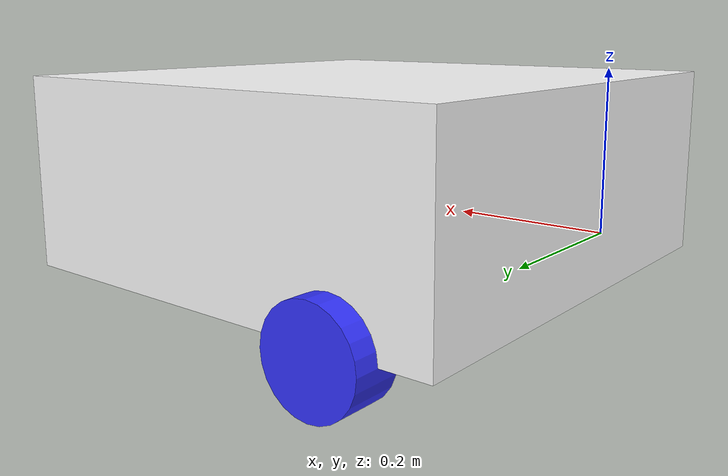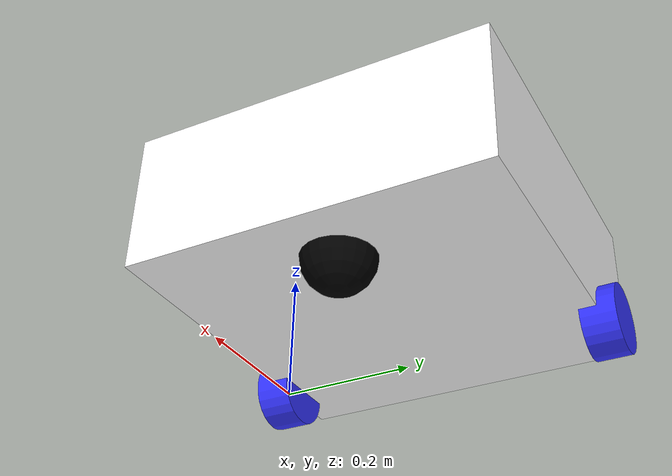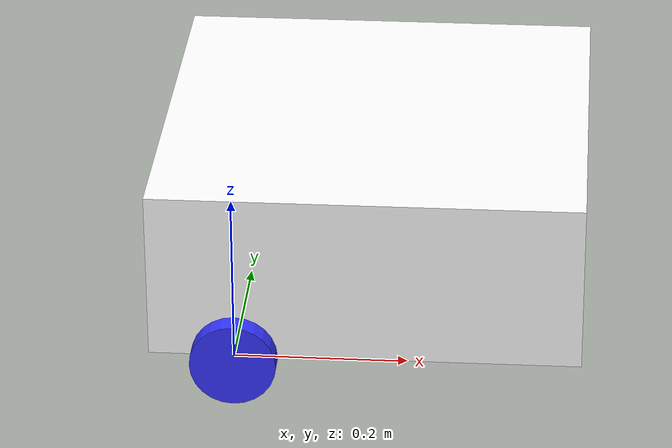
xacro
<robot xmlns:xacro="http://www.ros.org/wiki/xacro" name="mower">

<material name="white">
    <color rgba="1 1 1 1"/>
</material>

<material name="orange">
    <color rgba="1 0.3 0.1 1"/>
</material>

<material name="blue">
    <color rgba="0.2 0.2 1 1"/>
</material>

<material name="black">
    <color rgba="0 0 0 1"/>
</material>

<link name="base_link">

</link>

<joint name="chassi_joint" type="fixed">
    <parent link="base_link"/>
    <child link="chassis"/>
    <origin xyz="-0.1 0 0"/>
</joint>

<link name="chassis">
    <visual>
    <origin xyz="0.25 0.25 0.1"/>
        <geometry>
            <box size="0.5 0.5 0.2"/>
        </geometry>
        <material name="white"/>
    </visual>
</link>

<joint name="left_wheel_joint" type="continuous">
    <parent link="base_link"/>
    <child link="left_wheel"/>
    <origin xyz="0 0.5 0" rpy="-${pi/2} 0 0"/>
    <axis xyz="0.0 0.0 1"/>
</joint>

<link name="left_wheel">
    <visual>
        <geometry>
            <cylinder radius="0.05" length="0.05"/>
        </geometry>
        <material name="blue"/>
    </visual>
    <collision>
        <geometry>
            <cylinder radius="0.05" length="0.05"/>
        </geometry>
    </collision>

</link>

<!-- Right wheel -->

<joint name="right_wheel_joint" type="continuous">
    <parent link="base_link"/>
    <child link="right_wheel"/>
    <origin xyz="0 0 0" rpy="${pi/2} 0 0"/>
    <axis xyz="0.0 0.0 -1"/>
</joint>

<link name="right_wheel">
    <visual>
        <geometry>
            <cylinder radius="0.05" length="0.05"/>
        </geometry>
        <material name="blue"/>
    </visual>
    <collision>
        <geometry>
            <cylinder radius="0.05" length="0.05"/>
        </geometry>
    </collision>
</link>

<!-- Caster wheel -->
<joint name="caster_wheel_joint" type="fixed">
    <parent link="chassis"/>
    <child link="caster_wheel"/>
      <origin xyz="0.4 0.25 0"/>
</joint>

<link name="caster_wheel">
    <visual>
        <geometry>
            <sphere radius="0.05"/>
        </geometry>
        <material name="black"/>
    </visual>
    <collision>
        <geometry>
            <sphere radius="0.05"/>
        </geometry>
    </collision>

</link>

</robot>
